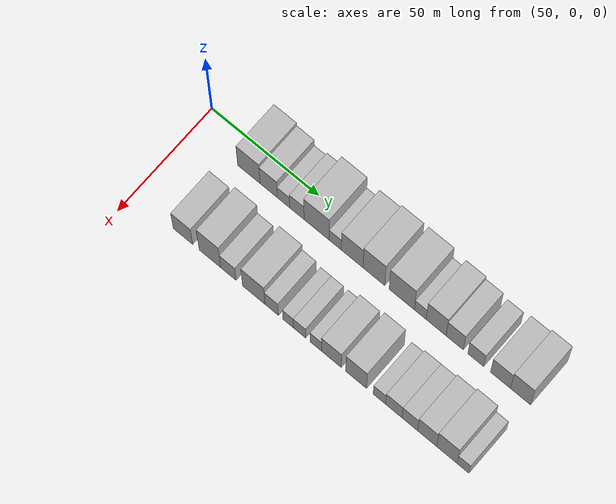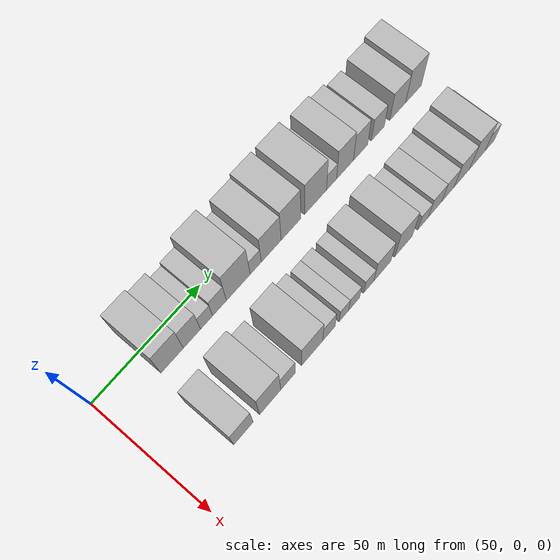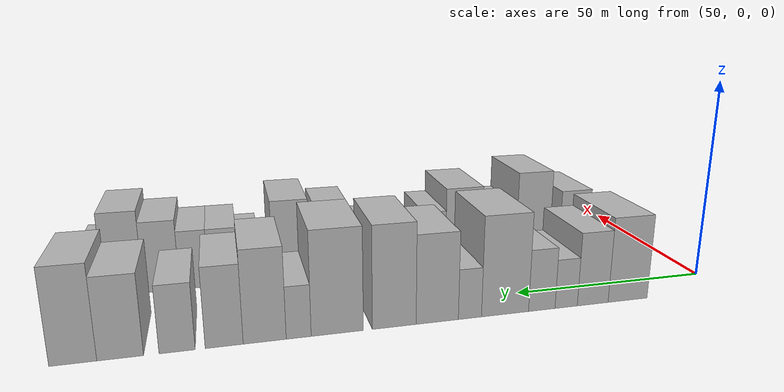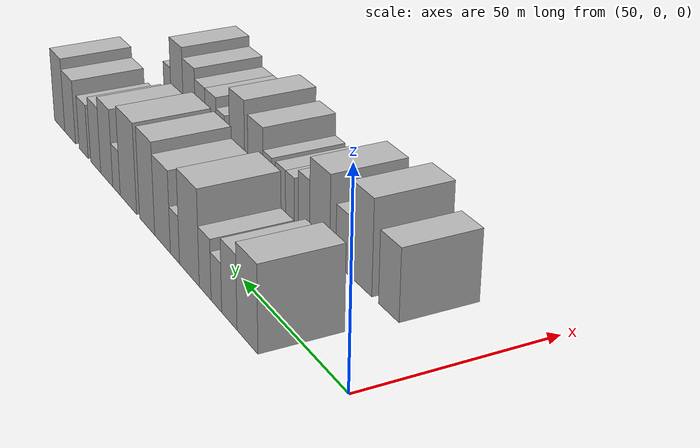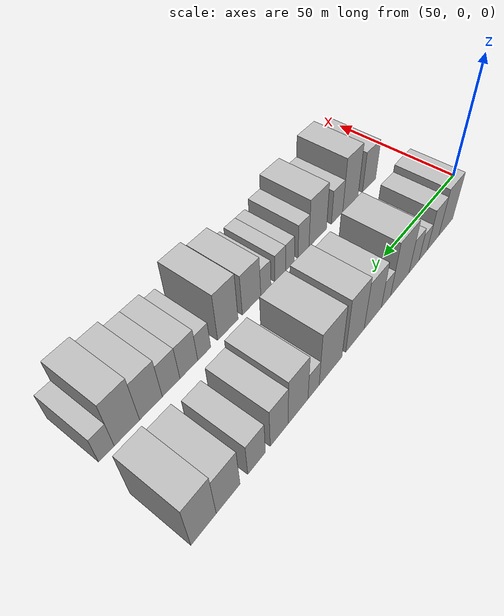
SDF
<sdf version="1.6">
 <world name="default">
  <model name="building_29">
   <static>1</static>
   <pose>50.0000 26.0660 0 0.000000 0.000000 0.000000</pose>
   <link name="link">
    <pose>0 0 10.50 0 0 0</pose>
    <collision name="collision"><geometry><box><size>20.0000 10.3743 21.0000</size></box></geometry></collision>
    <visual name="visual">
     <cast_shadows>0</cast_shadows>
     <geometry><box><size>20.0000 10.3743 21.0000</size></box></geometry>
     <material>
      <script>
       <uri>model://HANNAS_wall/materials/scripts</uri>
       <uri>model://HANNAS_wall/materials/textures</uri>
       <name>vrc/HANNAS_wall</name>
      </script>
     </material>
    </visual>
   </link>
  </model>
  <model name="building_30">
   <static>1</static>
   <pose>50.0000 35.2539 0 0.000000 0.000000 0.000000</pose>
   <link name="link">
    <pose>0 0 9.00 0 0 0</pose>
    <collision name="collision"><geometry><box><size>20.0000 8.0016 18.0000</size></box></geometry></collision>
    <visual name="visual">
     <cast_shadows>0</cast_shadows>
     <geometry><box><size>20.0000 8.0016 18.0000</size></box></geometry>
     <material>
      <script>
       <uri>model://HANNAS_wall/materials/scripts</uri>
       <uri>model://HANNAS_wall/materials/textures</uri>
       <name>vrc/HANNAS_wall</name>
      </script>
     </material>
    </visual>
   </link>
  </model>
  <model name="building_31">
   <static>1</static>
   <pose>50.0000 42.0999 0 0.000000 0.000000 0.000000</pose>
   <link name="link">
    <pose>0 0 6.00 0 0 0</pose>
    <collision name="collision"><geometry><box><size>20.0000 5.6902 12.0000</size></box></geometry></collision>
    <visual name="visual">
     <cast_shadows>0</cast_shadows>
     <geometry><box><size>20.0000 5.6902 12.0000</size></box></geometry>
     <material>
      <script>
       <uri>model://HANNAS_wall/materials/scripts</uri>
       <uri>model://HANNAS_wall/materials/textures</uri>
       <name>vrc/HANNAS_wall</name>
      </script>
     </material>
    </visual>
   </link>
  </model>
  <model name="building_32">
   <static>1</static>
   <pose>50.0000 48.2568 0 0.000000 0.000000 0.000000</pose>
   <link name="link">
    <pose>0 0 7.50 0 0 0</pose>
    <collision name="collision"><geometry><box><size>20.0000 6.6237 15.0000</size></box></geometry></collision>
    <visual name="visual">
     <cast_shadows>0</cast_shadows>
     <geometry><box><size>20.0000 6.6237 15.0000</size></box></geometry>
     <material>
      <script>
       <uri>model://HANNAS_wall/materials/scripts</uri>
       <uri>model://HANNAS_wall/materials/textures</uri>
       <name>vrc/HANNAS_wall</name>
      </script>
     </material>
    </visual>
   </link>
  </model>
  <model name="building_33">
   <static>1</static>
   <pose>50.0000 57.3167 0 0.000000 0.000000 0.000000</pose>
   <link name="link">
    <pose>0 0 12.00 0 0 0</pose>
    <collision name="collision"><geometry><box><size>20.0000 11.4961 24.0000</size></box></geometry></collision>
    <visual name="visual">
     <cast_shadows>0</cast_shadows>
     <geometry><box><size>20.0000 11.4961 24.0000</size></box></geometry>
     <material>
      <script>
       <uri>model://HANNAS_wall/materials/scripts</uri>
       <uri>model://HANNAS_wall/materials/textures</uri>
       <name>vrc/HANNAS_wall</name>
      </script>
     </material>
    </visual>
   </link>
  </model>
  <model name="building_34">
   <static>1</static>
   <pose>50.0000 65.8252 0 0.000000 0.000000 0.000000</pose>
   <link name="link">
    <pose>0 0 6.00 0 0 0</pose>
    <collision name="collision"><geometry><box><size>20.0000 5.5210 12.0000</size></box></geometry></collision>
    <visual name="visual">
     <cast_shadows>0</cast_shadows>
     <geometry><box><size>20.0000 5.5210 12.0000</size></box></geometry>
     <material>
      <script>
       <uri>model://HANNAS_wall/materials/scripts</uri>
       <uri>model://HANNAS_wall/materials/textures</uri>
       <name>vrc/HANNAS_wall</name>
      </script>
     </material>
    </visual>
   </link>
  </model>
  <model name="building_35">
   <static>1</static>
   <pose>50.0000 73.5058 0 0.000000 0.000000 0.000000</pose>
   <link name="link">
    <pose>0 0 10.50 0 0 0</pose>
    <collision name="collision"><geometry><box><size>20.0000 9.8404 21.0000</size></box></geometry></collision>
    <visual name="visual">
     <cast_shadows>0</cast_shadows>
     <geometry><box><size>20.0000 9.8404 21.0000</size></box></geometry>
     <material>
      <script>
       <uri>model://HANNAS_wall/materials/scripts</uri>
       <uri>model://HANNAS_wall/materials/textures</uri>
       <name>vrc/HANNAS_wall</name>
      </script>
     </material>
    </visual>
   </link>
  </model>
  <model name="building_36">
   <static>1</static>
   <pose>50.0000 83.3782 0 0.000000 0.000000 0.000000</pose>
   <link name="link">
    <pose>0 0 12.00 0 0 0</pose>
    <collision name="collision"><geometry><box><size>20.0000 9.9043 24.0000</size></box></geometry></collision>
    <visual name="visual">
     <cast_shadows>0</cast_shadows>
     <geometry><box><size>20.0000 9.9043 24.0000</size></box></geometry>
     <material>
      <script>
       <uri>model://HANNAS_wall/materials/scripts</uri>
       <uri>model://HANNAS_wall/materials/textures</uri>
       <name>vrc/HANNAS_wall</name>
      </script>
     </material>
    </visual>
   </link>
  </model>
  <model name="building_37">
   <static>1</static>
   <pose>50.0000 96.0265 0 0.000000 0.000000 0.000000</pose>
   <link name="link">
    <pose>0 0 12.00 0 0 0</pose>
    <collision name="collision"><geometry><box><size>20.0000 11.3923 24.0000</size></box></geometry></collision>
    <visual name="visual">
     <cast_shadows>0</cast_shadows>
     <geometry><box><size>20.0000 11.3923 24.0000</size></box></geometry>
     <material>
      <script>
       <uri>model://HANNAS_wall/materials/scripts</uri>
       <uri>model://HANNAS_wall/materials/textures</uri>
       <name>vrc/HANNAS_wall</name>
      </script>
     </material>
    </visual>
   </link>
  </model>
  <model name="building_38">
   <static>1</static>
   <pose>50.0000 104.3812 0 0.000000 0.000000 0.000000</pose>
   <link name="link">
    <pose>0 0 6.00 0 0 0</pose>
    <collision name="collision"><geometry><box><size>20.0000 5.3171 12.0000</size></box></geometry></collision>
    <visual name="visual">
     <cast_shadows>0</cast_shadows>
     <geometry><box><size>20.0000 5.3171 12.0000</size></box></geometry>
     <material>
      <script>
       <uri>model://HANNAS_wall/materials/scripts</uri>
       <uri>model://HANNAS_wall/materials/textures</uri>
       <name>vrc/HANNAS_wall</name>
      </script>
     </material>
    </visual>
   </link>
  </model>
  <model name="building_39">
   <static>1</static>
   <pose>50.0000 111.5138 0 0.000000 0.000000 0.000000</pose>
   <link name="link">
    <pose>0 0 10.50 0 0 0</pose>
    <collision name="collision"><geometry><box><size>20.0000 8.9482 21.0000</size></box></geometry></collision>
    <visual name="visual">
     <cast_shadows>0</cast_shadows>
     <geometry><box><size>20.0000 8.9482 21.0000</size></box></geometry>
     <material>
      <script>
       <uri>model://HANNAS_wall/materials/scripts</uri>
       <uri>model://HANNAS_wall/materials/textures</uri>
       <name>vrc/HANNAS_wall</name>
      </script>
     </material>
    </visual>
   </link>
  </model>
  <model name="building_40">
   <static>1</static>
   <pose>50.0000 119.8399 0 0.000000 0.000000 0.000000</pose>
   <link name="link">
    <pose>0 0 9.00 0 0 0</pose>
    <collision name="collision"><geometry><box><size>20.0000 7.7039 18.0000</size></box></geometry></collision>
    <visual name="visual">
     <cast_shadows>0</cast_shadows>
     <geometry><box><size>20.0000 7.7039 18.0000</size></box></geometry>
     <material>
      <script>
       <uri>model://HANNAS_wall/materials/scripts</uri>
       <uri>model://HANNAS_wall/materials/textures</uri>
       <name>vrc/HANNAS_wall</name>
      </script>
     </material>
    </visual>
   </link>
  </model>
  <model name="building_41">
   <static>1</static>
   <pose>50.0000 129.2516 0 0.000000 0.000000 0.000000</pose>
   <link name="link">
    <pose>0 0 7.50 0 0 0</pose>
    <collision name="collision"><geometry><box><size>20.0000 7.1196 15.0000</size></box></geometry></collision>
    <visual name="visual">
     <cast_shadows>0</cast_shadows>
     <geometry><box><size>20.0000 7.1196 15.0000</size></box></geometry>
     <material>
      <script>
       <uri>model://HANNAS_wall/materials/scripts</uri>
       <uri>model://HANNAS_wall/materials/textures</uri>
       <name>vrc/HANNAS_wall</name>
      </script>
     </material>
    </visual>
   </link>
  </model>
  <model name="building_42">
   <static>1</static>
   <pose>50.0000 140.2515 0 0.000000 0.000000 0.000000</pose>
   <link name="link">
    <pose>0 0 9.00 0 0 0</pose>
    <collision name="collision"><geometry><box><size>20.0000 8.8802 18.0000</size></box></geometry></collision>
    <visual name="visual">
     <cast_shadows>0</cast_shadows>
     <geometry><box><size>20.0000 8.8802 18.0000</size></box></geometry>
     <material>
      <script>
       <uri>model://HANNAS_wall/materials/scripts</uri>
       <uri>model://HANNAS_wall/materials/textures</uri>
       <name>vrc/HANNAS_wall</name>
      </script>
     </material>
    </visual>
   </link>
  </model>
  <model name="building_43">
   <static>1</static>
   <pose>50.0000 149.1333 0 0.000000 0.000000 0.000000</pose>
   <link name="link">
    <pose>0 0 10.50 0 0 0</pose>
    <collision name="collision"><geometry><box><size>20.0000 8.8835 21.0000</size></box></geometry></collision>
    <visual name="visual">
     <cast_shadows>0</cast_shadows>
     <geometry><box><size>20.0000 8.8835 21.0000</size></box></geometry>
     <material>
      <script>
       <uri>model://HANNAS_wall/materials/scripts</uri>
       <uri>model://HANNAS_wall/materials/textures</uri>
       <name>vrc/HANNAS_wall</name>
      </script>
     </material>
    </visual>
   </link>
  </model>
  <model name="building_91">
   <static>1</static>
   <pose>82.0000 23.5148 0 0.000000 0.000000 0.000000</pose>
   <link name="link">
    <pose>0 0 9.00 0 0 0</pose>
    <collision name="collision"><geometry><box><size>20.0000 8.9794 18.0000</size></box></geometry></collision>
    <visual name="visual">
     <cast_shadows>0</cast_shadows>
     <geometry><box><size>20.0000 8.9794 18.0000</size></box></geometry>
     <material>
      <script>
       <uri>model://HANNAS_wall/materials/scripts</uri>
       <uri>model://HANNAS_wall/materials/textures</uri>
       <name>vrc/HANNAS_wall</name>
      </script>
     </material>
    </visual>
   </link>
  </model>
  <model name="building_92">
   <static>1</static>
   <pose>82.0000 35.9779 0 0.000000 0.000000 0.000000</pose>
   <link name="link">
    <pose>0 0 12.00 0 0 0</pose>
    <collision name="collision"><geometry><box><size>20.0000 9.9468 24.0000</size></box></geometry></collision>
    <visual name="visual">
     <cast_shadows>0</cast_shadows>
     <geometry><box><size>20.0000 9.9468 24.0000</size></box></geometry>
     <material>
      <script>
       <uri>model://HANNAS_wall/materials/scripts</uri>
       <uri>model://HANNAS_wall/materials/textures</uri>
       <name>vrc/HANNAS_wall</name>
      </script>
     </material>
    </visual>
   </link>
  </model>
  <model name="building_93">
   <static>1</static>
   <pose>82.0000 44.4574 0 0.000000 0.000000 0.000000</pose>
   <link name="link">
    <pose>0 0 7.50 0 0 0</pose>
    <collision name="collision"><geometry><box><size>20.0000 7.0122 15.0000</size></box></geometry></collision>
    <visual name="visual">
     <cast_shadows>0</cast_shadows>
     <geometry><box><size>20.0000 7.0122 15.0000</size></box></geometry>
     <material>
      <script>
       <uri>model://HANNAS_wall/materials/scripts</uri>
       <uri>model://HANNAS_wall/materials/textures</uri>
       <name>vrc/HANNAS_wall</name>
      </script>
     </material>
    </visual>
   </link>
  </model>
  <model name="building_94">
   <static>1</static>
   <pose>82.0000 56.1017 0 0.000000 0.000000 0.000000</pose>
   <link name="link">
    <pose>0 0 10.50 0 0 0</pose>
    <collision name="collision"><geometry><box><size>20.0000 10.2764 21.0000</size></box></geometry></collision>
    <visual name="visual">
     <cast_shadows>0</cast_shadows>
     <geometry><box><size>20.0000 10.2764 21.0000</size></box></geometry>
     <material>
      <script>
       <uri>model://HANNAS_wall/materials/scripts</uri>
       <uri>model://HANNAS_wall/materials/textures</uri>
       <name>vrc/HANNAS_wall</name>
      </script>
     </material>
    </visual>
   </link>
  </model>
  <model name="building_95">
   <static>1</static>
   <pose>82.0000 64.3131 0 0.000000 0.000000 0.000000</pose>
   <link name="link">
    <pose>0 0 7.50 0 0 0</pose>
    <collision name="collision"><geometry><box><size>20.0000 6.1464 15.0000</size></box></geometry></collision>
    <visual name="visual">
     <cast_shadows>0</cast_shadows>
     <geometry><box><size>20.0000 6.1464 15.0000</size></box></geometry>
     <material>
      <script>
       <uri>model://HANNAS_wall/materials/scripts</uri>
       <uri>model://HANNAS_wall/materials/textures</uri>
       <name>vrc/HANNAS_wall</name>
      </script>
     </material>
    </visual>
   </link>
  </model>
  <model name="building_96">
   <static>1</static>
   <pose>82.0000 71.7935 0 0.000000 0.000000 0.000000</pose>
   <link name="link">
    <pose>0 0 6.00 0 0 0</pose>
    <collision name="collision"><geometry><box><size>20.0000 4.8145 12.0000</size></box></geometry></collision>
    <visual name="visual">
     <cast_shadows>0</cast_shadows>
     <geometry><box><size>20.0000 4.8145 12.0000</size></box></geometry>
     <material>
      <script>
       <uri>model://HANNAS_wall/materials/scripts</uri>
       <uri>model://HANNAS_wall/materials/textures</uri>
       <name>vrc/HANNAS_wall</name>
      </script>
     </material>
    </visual>
   </link>
  </model>
  <model name="building_97">
   <static>1</static>
   <pose>82.0000 76.9736 0 0.000000 0.000000 0.000000</pose>
   <link name="link">
    <pose>0 0 6.00 0 0 0</pose>
    <collision name="collision"><geometry><box><size>20.0000 5.5459 12.0000</size></box></geometry></collision>
    <visual name="visual">
     <cast_shadows>0</cast_shadows>
     <geometry><box><size>20.0000 5.5459 12.0000</size></box></geometry>
     <material>
      <script>
       <uri>model://HANNAS_wall/materials/scripts</uri>
       <uri>model://HANNAS_wall/materials/textures</uri>
       <name>vrc/HANNAS_wall</name>
      </script>
     </material>
    </visual>
   </link>
  </model>
  <model name="building_98">
   <static>1</static>
   <pose>82.0000 84.3334 0 0.000000 0.000000 0.000000</pose>
   <link name="link">
    <pose>0 0 6.00 0 0 0</pose>
    <collision name="collision"><geometry><box><size>20.0000 5.1737 12.0000</size></box></geometry></collision>
    <visual name="visual">
     <cast_shadows>0</cast_shadows>
     <geometry><box><size>20.0000 5.1737 12.0000</size></box></geometry>
     <material>
      <script>
       <uri>model://HANNAS_wall/materials/scripts</uri>
       <uri>model://HANNAS_wall/materials/textures</uri>
       <name>vrc/HANNAS_wall</name>
      </script>
     </material>
    </visual>
   </link>
  </model>
  <model name="building_99">
   <static>1</static>
   <pose>82.0000 91.3804 0 0.000000 0.000000 0.000000</pose>
   <link name="link">
    <pose>0 0 9.00 0 0 0</pose>
    <collision name="collision"><geometry><box><size>20.0000 8.9202 18.0000</size></box></geometry></collision>
    <visual name="visual">
     <cast_shadows>0</cast_shadows>
     <geometry><box><size>20.0000 8.9202 18.0000</size></box></geometry>
     <material>
      <script>
       <uri>model://HANNAS_wall/materials/scripts</uri>
       <uri>model://HANNAS_wall/materials/textures</uri>
       <name>vrc/HANNAS_wall</name>
      </script>
     </material>
    </visual>
   </link>
  </model>
  <model name="building_100">
   <static>1</static>
   <pose>82.0000 102.5125 0 0.000000 0.000000 0.000000</pose>
   <link name="link">
    <pose>0 0 10.50 0 0 0</pose>
    <collision name="collision"><geometry><box><size>20.0000 9.3439 21.0000</size></box></geometry></collision>
    <visual name="visual">
     <cast_shadows>0</cast_shadows>
     <geometry><box><size>20.0000 9.3439 21.0000</size></box></geometry>
     <material>
      <script>
       <uri>model://HANNAS_wall/materials/scripts</uri>
       <uri>model://HANNAS_wall/materials/textures</uri>
       <name>vrc/HANNAS_wall</name>
      </script>
     </material>
    </visual>
   </link>
  </model>
  <model name="building_101">
   <static>1</static>
   <pose>82.0000 112.9510 0 0.000000 0.000000 0.000000</pose>
   <link name="link">
    <pose>0 0 6.00 0 0 0</pose>
    <collision name="collision"><geometry><box><size>20.0000 5.5330 12.0000</size></box></geometry></collision>
    <visual name="visual">
     <cast_shadows>0</cast_shadows>
     <geometry><box><size>20.0000 5.5330 12.0000</size></box></geometry>
     <material>
      <script>
       <uri>model://HANNAS_wall/materials/scripts</uri>
       <uri>model://HANNAS_wall/materials/textures</uri>
       <name>vrc/HANNAS_wall</name>
      </script>
     </material>
    </visual>
   </link>
  </model>
  <model name="building_102">
   <static>1</static>
   <pose>82.0000 119.3802 0 0.000000 0.000000 0.000000</pose>
   <link name="link">
    <pose>0 0 7.50 0 0 0</pose>
    <collision name="collision"><geometry><box><size>20.0000 7.3254 15.0000</size></box></geometry></collision>
    <visual name="visual">
     <cast_shadows>0</cast_shadows>
     <geometry><box><size>20.0000 7.3254 15.0000</size></box></geometry>
     <material>
      <script>
       <uri>model://HANNAS_wall/materials/scripts</uri>
       <uri>model://HANNAS_wall/materials/textures</uri>
       <name>vrc/HANNAS_wall</name>
      </script>
     </material>
    </visual>
   </link>
  </model>
  <model name="building_103">
   <static>1</static>
   <pose>82.0000 126.5073 0 0.000000 0.000000 0.000000</pose>
   <link name="link">
    <pose>0 0 7.50 0 0 0</pose>
    <collision name="collision"><geometry><box><size>20.0000 6.9288 15.0000</size></box></geometry></collision>
    <visual name="visual">
     <cast_shadows>0</cast_shadows>
     <geometry><box><size>20.0000 6.9288 15.0000</size></box></geometry>
     <material>
      <script>
       <uri>model://HANNAS_wall/materials/scripts</uri>
       <uri>model://HANNAS_wall/materials/textures</uri>
       <name>vrc/HANNAS_wall</name>
      </script>
     </material>
    </visual>
   </link>
  </model>
  <model name="building_104">
   <static>1</static>
   <pose>82.0000 134.2280 0 0.000000 0.000000 0.000000</pose>
   <link name="link">
    <pose>0 0 9.00 0 0 0</pose>
    <collision name="collision"><geometry><box><size>20.0000 8.5126 18.0000</size></box></geometry></collision>
    <visual name="visual">
     <cast_shadows>0</cast_shadows>
     <geometry><box><size>20.0000 8.5126 18.0000</size></box></geometry>
     <material>
      <script>
       <uri>model://HANNAS_wall/materials/scripts</uri>
       <uri>model://HANNAS_wall/materials/textures</uri>
       <name>vrc/HANNAS_wall</name>
      </script>
     </material>
    </visual>
   </link>
  </model>
  <model name="building_105">
   <static>1</static>
   <pose>82.0000 142.9888 0 0.000000 0.000000 0.000000</pose>
   <link name="link">
    <pose>0 0 10.50 0 0 0</pose>
    <collision name="collision"><geometry><box><size>20.0000 9.0090 21.0000</size></box></geometry></collision>
    <visual name="visual">
     <cast_shadows>0</cast_shadows>
     <geometry><box><size>20.0000 9.0090 21.0000</size></box></geometry>
     <material>
      <script>
       <uri>model://HANNAS_wall/materials/scripts</uri>
       <uri>model://HANNAS_wall/materials/textures</uri>
       <name>vrc/HANNAS_wall</name>
      </script>
     </material>
    </visual>
   </link>
  </model>
  <model name="building_106">
   <static>1</static>
   <pose>82.0000 150.1340 0 0.000000 0.000000 0.000000</pose>
   <link name="link">
    <pose>0 0 6.00 0 0 0</pose>
    <collision name="collision"><geometry><box><size>20.0000 5.2813 12.0000</size></box></geometry></collision>
    <visual name="visual">
     <cast_shadows>0</cast_shadows>
     <geometry><box><size>20.0000 5.2813 12.0000</size></box></geometry>
     <material>
      <script>
       <uri>model://HANNAS_wall/materials/scripts</uri>
       <uri>model://HANNAS_wall/materials/textures</uri>
       <name>vrc/HANNAS_wall</name>
      </script>
     </material>
    </visual>
   </link>
  </model>
 </world>
</sdf>
